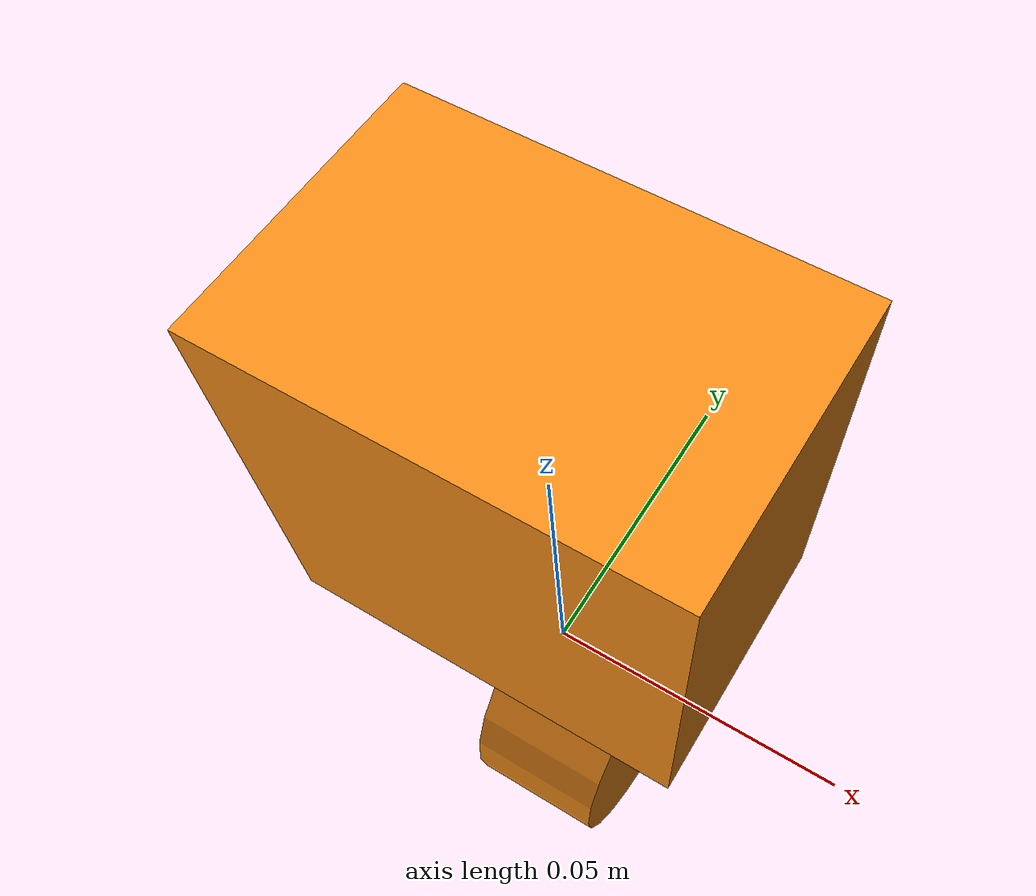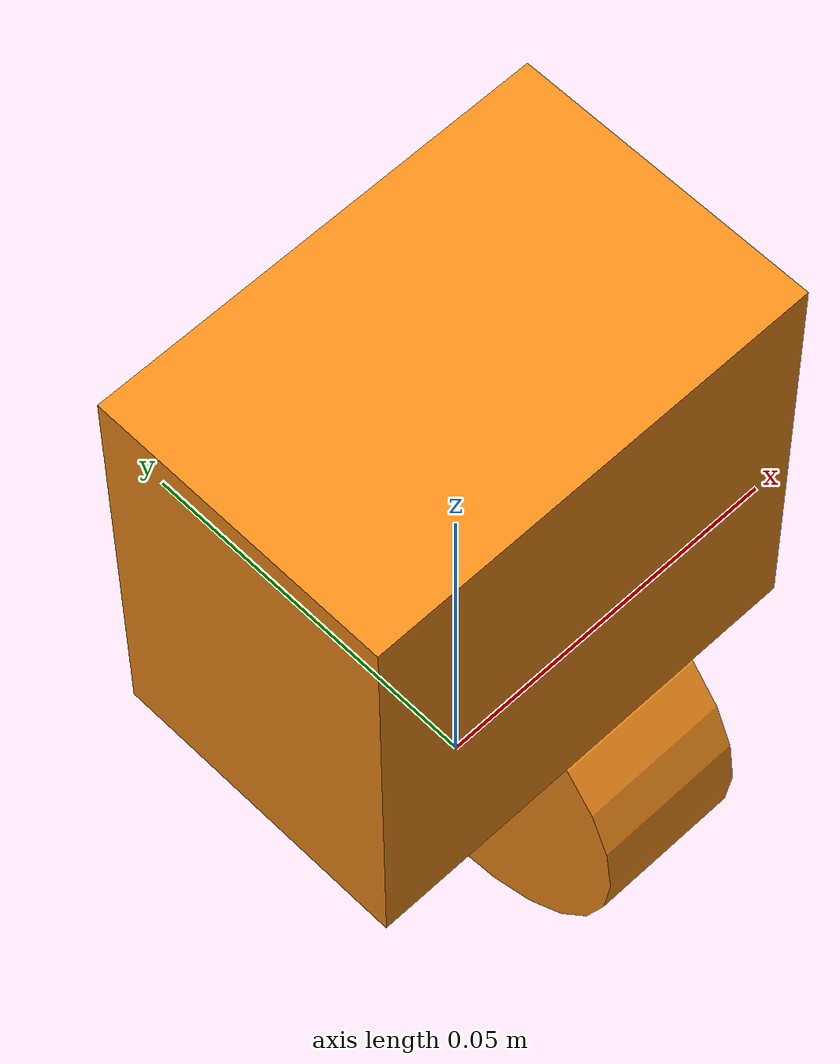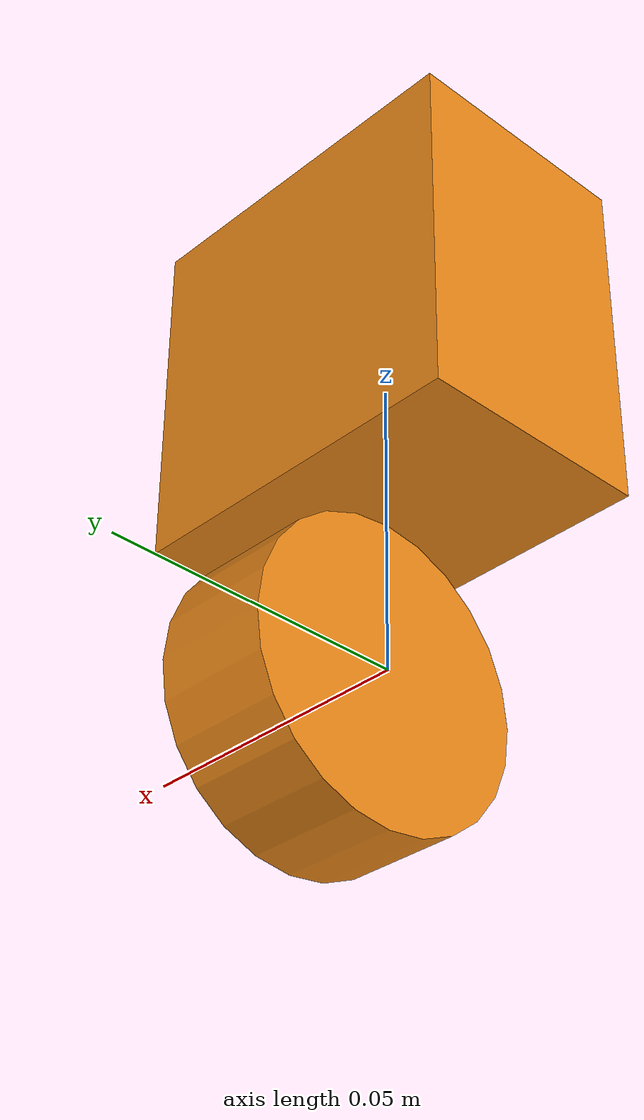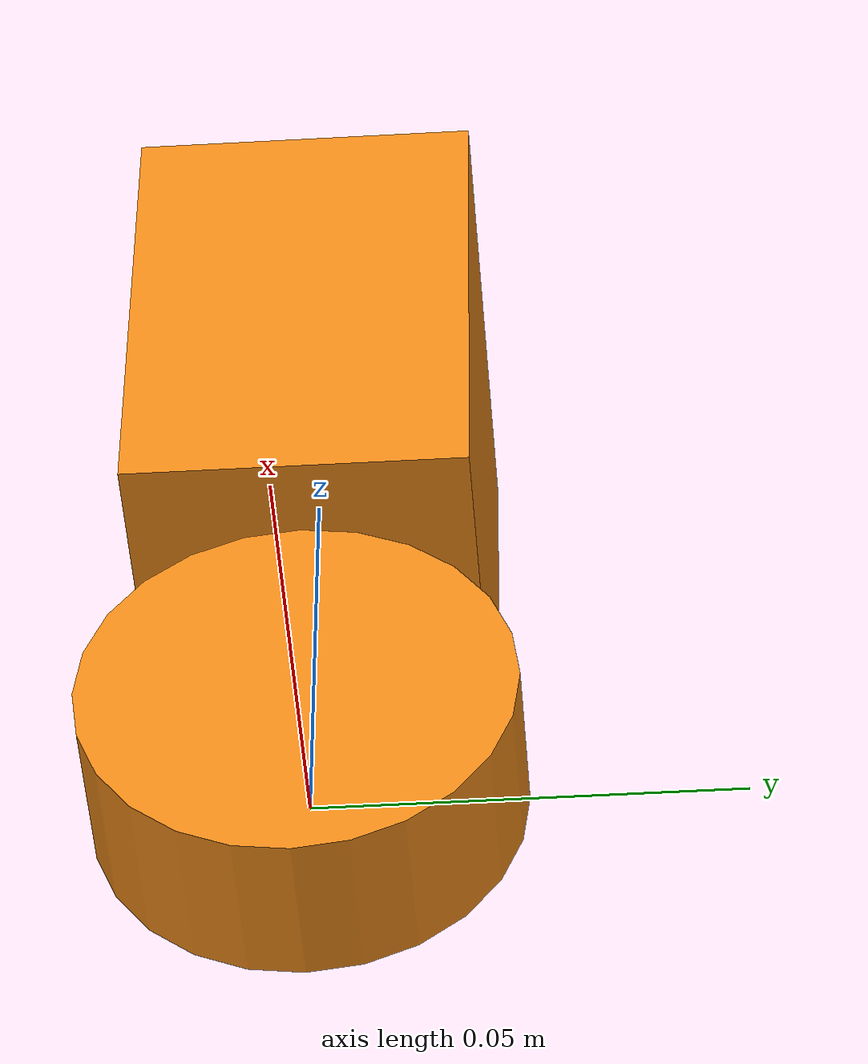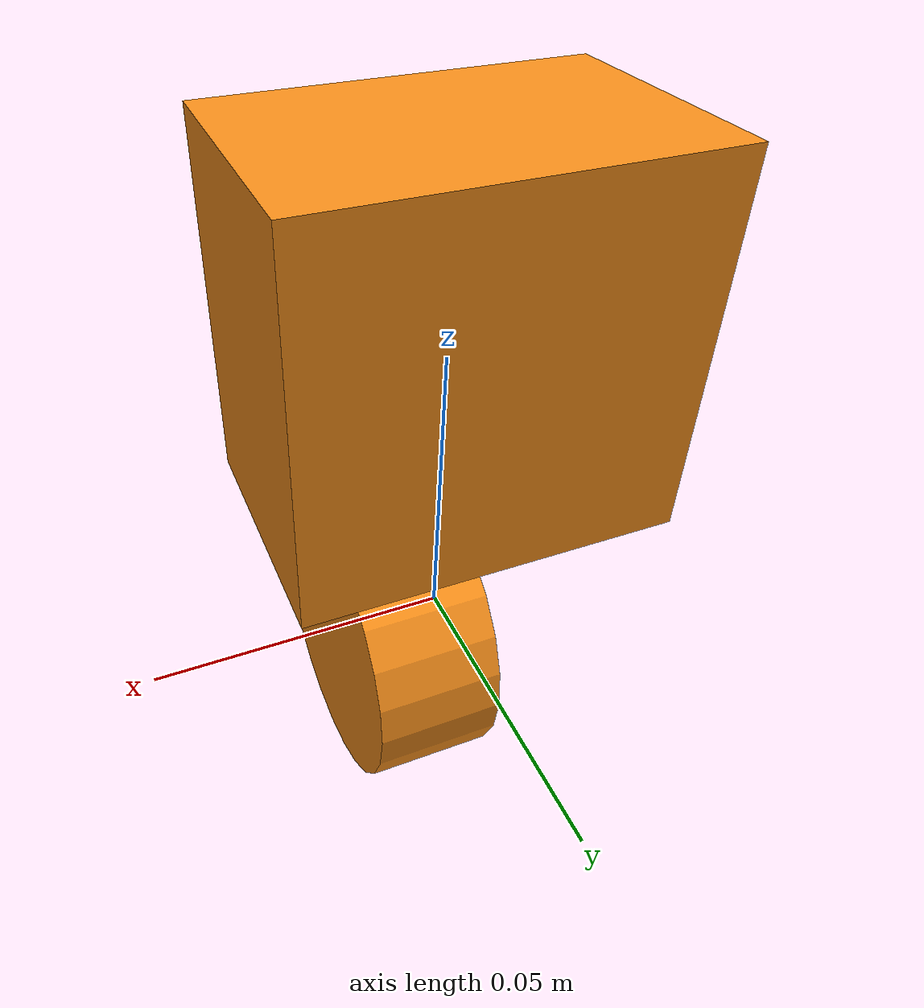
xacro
<?xml version="1.0"?>
<robot xmlns:xacro="http://www.ros.org/wiki/xacro">

  <link name="link4_part1">
    <visual>
      <geometry>
        <cylinder length="0.02" radius="0.025"/>
      </geometry>
      <origin xyz="0.01 0 0" rpy="0 1.57075 0"/>
      <material name="orange"/>
    </visual>
  </link>

  <link name="link4_part2">
    <visual>
      <geometry>
        <box size="0.06 0.04 0.059"/>
      </geometry>
      <origin xyz="0 0 0.0295" rpy="0 0 0"/>
      <material name="orange"/>
    </visual>
  </link>

  <joint name="link4_fixed" type="fixed">
    <parent link="link4_part1"/>
    <child link="link4_part2"/>
    <origin xyz="0 0 0.025" rpy="0 0 0"/>
  </joint>
</robot>
